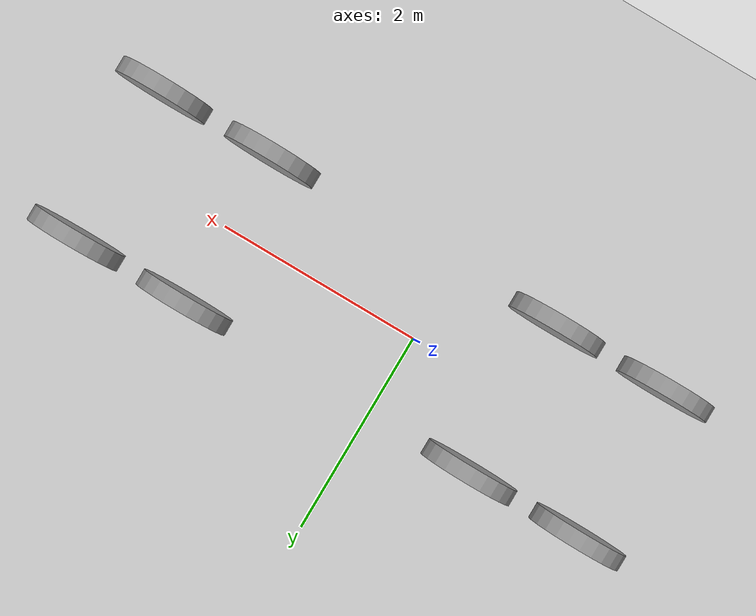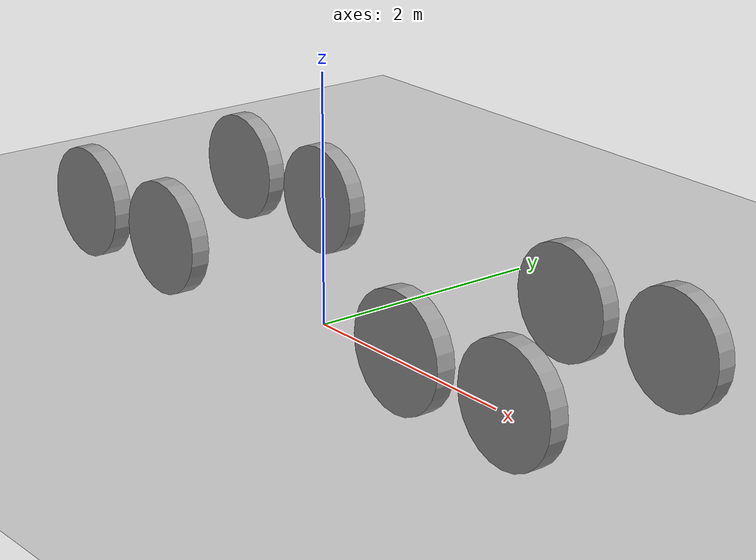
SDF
<sdf version="1.7">
 <world name="default">
  <model name="ground_plane">
   <static>1</static>
   <link name="link">
    <collision name="collision">
     <geometry><plane><normal>0 0 1</normal><size>100 100</size></plane></geometry>
     <surface>
      <contact><collide_bitmask>65535</collide_bitmask></contact>
      <friction><ode><mu>100</mu><mu2>50</mu2></ode></friction>
     </surface>
    </collision>
    <visual name="visual">
     <cast_shadows>0</cast_shadows>
     <geometry><plane><normal>0 0 1</normal><size>100 100</size></plane></geometry>
     <material>
      <script><uri>file://media/materials/scripts/gazebo.material</uri><name>Gazebo/Grey</name></script>
     </material>
    </visual>
   </link>
  </model>
  <model name="train_wheels">
   <link name="link">
    <inertial>
     <mass>1</mass>
     <inertia><ixx>0.145833</ixx><ixy>0</ixy><ixz>0</ixz><iyy>0.145833</iyy><iyz>0</iyz><izz>0.125</izz></inertia>
    </inertial>
    <pose>3 0.75 0.6 0 -0 0</pose>
    <visual name="visual">
     <geometry><cylinder><radius>0.45</radius><length>0.15</length></cylinder></geometry>
     <material>
      <script><name>Gazebo/Grey</name><uri>file://media/materials/scripts/gazebo.material</uri></script>
      <shader type="pixel"><normal_map>__default__</normal_map></shader>
      <ambient>0.3 0.3 0.3 1</ambient>
      <diffuse>0.7 0.7 0.7 1</diffuse>
      <specular>0.01 0.01 0.01 1</specular>
      <emissive>0 0 0 1</emissive>
     </material>
     <pose>0 0 0 1.5708 -0 0</pose>
    </visual>
    <collision name="collision">
     <geometry><cylinder><radius>0.45</radius><length>0.15</length></cylinder></geometry>
     <pose>0 0 0 1.5708 -0 0</pose>
     <material>
      <script><name>Gazebo/Grey</name><uri>file://media/materials/scripts/gazebo.material</uri></script>
      <shader type="pixel"><normal_map>__default__</normal_map></shader>
      <ambient>0.3 0.3 0.3 1</ambient>
      <diffuse>0.7 0.7 0.7 1</diffuse>
      <specular>0.01 0.01 0.01 1</specular>
      <emissive>0 0 0 1</emissive>
     </material>
    </collision>
   </link>
   <link name="link_clone">
    <inertial>
     <mass>1</mass>
     <inertia><ixx>0.145833</ixx><ixy>0</ixy><ixz>0</ixz><iyy>0.145833</iyy><iyz>0</iyz><izz>0.125</izz></inertia>
    </inertial>
    <pose>1.9 0.75 0.6 0 -0 0</pose>
    <visual name="visual">
     <geometry><cylinder><radius>0.45</radius><length>0.15</length></cylinder></geometry>
     <material>
      <script><name>Gazebo/Grey</name><uri>file://media/materials/scripts/gazebo.material</uri></script>
      <shader type="pixel"><normal_map>__default__</normal_map></shader>
      <ambient>0.3 0.3 0.3 1</ambient>
      <diffuse>0.7 0.7 0.7 1</diffuse>
      <specular>0.01 0.01 0.01 1</specular>
      <emissive>0 0 0 1</emissive>
     </material>
     <pose>0 0 0 1.5708 -0 0</pose>
    </visual>
    <collision name="collision">
     <geometry><cylinder><radius>0.45</radius><length>0.15</length></cylinder></geometry>
     <pose>0 0 0 1.5708 -0 0</pose>
     <material>
      <script><name>Gazebo/Grey</name><uri>file://media/materials/scripts/gazebo.material</uri></script>
      <shader type="pixel"><normal_map>__default__</normal_map></shader>
      <ambient>0.3 0.3 0.3 1</ambient>
      <diffuse>0.7 0.7 0.7 1</diffuse>
      <specular>0.01 0.01 0.01 1</specular>
      <emissive>0 0 0 1</emissive>
     </material>
    </collision>
   </link>
   <link name="link_clone_0">
    <inertial>
     <mass>1</mass>
     <inertia><ixx>0.145833</ixx><ixy>0</ixy><ixz>0</ixz><iyy>0.145833</iyy><iyz>0</iyz><izz>0.125</izz></inertia>
    </inertial>
    <pose>3 -0.75 0.6 0 -0 0</pose>
    <visual name="visual">
     <geometry><cylinder><radius>0.45</radius><length>0.15</length></cylinder></geometry>
     <material>
      <script><name>Gazebo/Grey</name><uri>file://media/materials/scripts/gazebo.material</uri></script>
      <shader type="pixel"><normal_map>__default__</normal_map></shader>
      <ambient>0.3 0.3 0.3 1</ambient>
      <diffuse>0.7 0.7 0.7 1</diffuse>
      <specular>0.01 0.01 0.01 1</specular>
      <emissive>0 0 0 1</emissive>
     </material>
     <pose>0 0 0 1.5708 -0 0</pose>
    </visual>
    <collision name="collision">
     <geometry><cylinder><radius>0.45</radius><length>0.15</length></cylinder></geometry>
     <pose>0 0 0 1.5708 -0 0</pose>
     <material>
      <script><name>Gazebo/Grey</name><uri>file://media/materials/scripts/gazebo.material</uri></script>
      <shader type="pixel"><normal_map>__default__</normal_map></shader>
      <ambient>0.3 0.3 0.3 1</ambient>
      <diffuse>0.7 0.7 0.7 1</diffuse>
      <specular>0.01 0.01 0.01 1</specular>
      <emissive>0 0 0 1</emissive>
     </material>
    </collision>
   </link>
   <link name="link_clone_0_clone">
    <inertial>
     <mass>1</mass>
     <inertia><ixx>0.145833</ixx><ixy>0</ixy><ixz>0</ixz><iyy>0.145833</iyy><iyz>0</iyz><izz>0.125</izz></inertia>
    </inertial>
    <pose>1.9 -0.75 0.6 0 -0 0</pose>
    <visual name="visual">
     <geometry><cylinder><radius>0.45</radius><length>0.15</length></cylinder></geometry>
     <material>
      <script><name>Gazebo/Grey</name><uri>file://media/materials/scripts/gazebo.material</uri></script>
      <shader type="pixel"><normal_map>__default__</normal_map></shader>
      <ambient>0.3 0.3 0.3 1</ambient>
      <diffuse>0.7 0.7 0.7 1</diffuse>
      <specular>0.01 0.01 0.01 1</specular>
      <emissive>0 0 0 1</emissive>
     </material>
     <pose>0 0 0 1.5708 -0 0</pose>
    </visual>
    <collision name="collision">
     <geometry><cylinder><radius>0.45</radius><length>0.15</length></cylinder></geometry>
     <pose>0 0 0 1.5708 -0 0</pose>
     <material>
      <script><name>Gazebo/Grey</name><uri>file://media/materials/scripts/gazebo.material</uri></script>
      <shader type="pixel"><normal_map>__default__</normal_map></shader>
      <ambient>0.3 0.3 0.3 1</ambient>
      <diffuse>0.7 0.7 0.7 1</diffuse>
      <specular>0.01 0.01 0.01 1</specular>
      <emissive>0 0 0 1</emissive>
     </material>
    </collision>
   </link>
   <link name="link_clone_0_clone_clone">
    <inertial>
     <mass>1</mass>
     <inertia><ixx>0.145833</ixx><ixy>0</ixy><ixz>0</ixz><iyy>0.145833</iyy><iyz>0</iyz><izz>0.125</izz></inertia>
    </inertial>
    <pose>-1 -0.75 0.6 0 -0 0</pose>
    <visual name="visual">
     <geometry><cylinder><radius>0.45</radius><length>0.15</length></cylinder></geometry>
     <material>
      <script><name>Gazebo/Grey</name><uri>file://media/materials/scripts/gazebo.material</uri></script>
      <shader type="pixel"><normal_map>__default__</normal_map></shader>
      <ambient>0.3 0.3 0.3 1</ambient>
      <diffuse>0.7 0.7 0.7 1</diffuse>
      <specular>0.01 0.01 0.01 1</specular>
      <emissive>0 0 0 1</emissive>
     </material>
     <pose>0 0 0 1.5708 -0 0</pose>
    </visual>
    <collision name="collision">
     <geometry><cylinder><radius>0.45</radius><length>0.15</length></cylinder></geometry>
     <pose>0 0 0 1.5708 -0 0</pose>
     <material>
      <script><name>Gazebo/Grey</name><uri>file://media/materials/scripts/gazebo.material</uri></script>
      <shader type="pixel"><normal_map>__default__</normal_map></shader>
      <ambient>0.3 0.3 0.3 1</ambient>
      <diffuse>0.7 0.7 0.7 1</diffuse>
      <specular>0.01 0.01 0.01 1</specular>
      <emissive>0 0 0 1</emissive>
     </material>
    </collision>
   </link>
   <link name="link_clone_0_clone_clone_clone">
    <inertial>
     <mass>1</mass>
     <inertia><ixx>0.145833</ixx><ixy>0</ixy><ixz>0</ixz><iyy>0.145833</iyy><iyz>0</iyz><izz>0.125</izz></inertia>
    </inertial>
    <pose>-2.1 -0.75 0.6 0 -0 0</pose>
    <visual name="visual">
     <geometry><cylinder><radius>0.45</radius><length>0.15</length></cylinder></geometry>
     <material>
      <script><name>Gazebo/Grey</name><uri>file://media/materials/scripts/gazebo.material</uri></script>
      <shader type="pixel"><normal_map>__default__</normal_map></shader>
      <ambient>0.3 0.3 0.3 1</ambient>
      <diffuse>0.7 0.7 0.7 1</diffuse>
      <specular>0.01 0.01 0.01 1</specular>
      <emissive>0 0 0 1</emissive>
     </material>
     <pose>0 0 0 1.5708 -0 0</pose>
    </visual>
    <collision name="collision">
     <geometry><cylinder><radius>0.45</radius><length>0.15</length></cylinder></geometry>
     <pose>0 0 0 1.5708 -0 0</pose>
     <material>
      <script><name>Gazebo/Grey</name><uri>file://media/materials/scripts/gazebo.material</uri></script>
      <shader type="pixel"><normal_map>__default__</normal_map></shader>
      <ambient>0.3 0.3 0.3 1</ambient>
      <diffuse>0.7 0.7 0.7 1</diffuse>
      <specular>0.01 0.01 0.01 1</specular>
      <emissive>0 0 0 1</emissive>
     </material>
    </collision>
   </link>
   <link name="link_clone_clone">
    <inertial>
     <mass>1</mass>
     <inertia><ixx>0.145833</ixx><ixy>0</ixy><ixz>0</ixz><iyy>0.145833</iyy><iyz>0</iyz><izz>0.125</izz></inertia>
    </inertial>
    <pose>-1 0.75 0.6 0 -0 0</pose>
    <visual name="visual">
     <geometry><cylinder><radius>0.45</radius><length>0.15</length></cylinder></geometry>
     <material>
      <script><name>Gazebo/Grey</name><uri>file://media/materials/scripts/gazebo.material</uri></script>
      <shader type="pixel"><normal_map>__default__</normal_map></shader>
      <ambient>0.3 0.3 0.3 1</ambient>
      <diffuse>0.7 0.7 0.7 1</diffuse>
      <specular>0.01 0.01 0.01 1</specular>
      <emissive>0 0 0 1</emissive>
     </material>
     <pose>0 0 0 1.5708 -0 0</pose>
    </visual>
    <collision name="collision">
     <geometry><cylinder><radius>0.45</radius><length>0.15</length></cylinder></geometry>
     <pose>0 0 0 1.5708 -0 0</pose>
     <material>
      <script><name>Gazebo/Grey</name><uri>file://media/materials/scripts/gazebo.material</uri></script>
      <shader type="pixel"><normal_map>__default__</normal_map></shader>
      <ambient>0.3 0.3 0.3 1</ambient>
      <diffuse>0.7 0.7 0.7 1</diffuse>
      <specular>0.01 0.01 0.01 1</specular>
      <emissive>0 0 0 1</emissive>
     </material>
    </collision>
   </link>
   <link name="link_clone_clone_clone">
    <inertial>
     <mass>1</mass>
     <inertia><ixx>0.145833</ixx><ixy>0</ixy><ixz>0</ixz><iyy>0.145833</iyy><iyz>0</iyz><izz>0.125</izz></inertia>
    </inertial>
    <pose>-2.1 0.75 0.6 0 -0 0</pose>
    <visual name="visual">
     <geometry><cylinder><radius>0.45</radius><length>0.15</length></cylinder></geometry>
     <material>
      <script><name>Gazebo/Grey</name><uri>file://media/materials/scripts/gazebo.material</uri></script>
      <shader type="pixel"><normal_map>__default__</normal_map></shader>
      <ambient>0.3 0.3 0.3 1</ambient>
      <diffuse>0.7 0.7 0.7 1</diffuse>
      <specular>0.01 0.01 0.01 1</specular>
      <emissive>0 0 0 1</emissive>
     </material>
     <pose>0 0 0 1.5708 -0 0</pose>
    </visual>
    <collision name="collision">
     <geometry><cylinder><radius>0.45</radius><length>0.15</length></cylinder></geometry>
     <pose>0 0 0 1.5708 -0 0</pose>
     <material>
      <script><name>Gazebo/Grey</name><uri>file://media/materials/scripts/gazebo.material</uri></script>
      <shader type="pixel"><normal_map>__default__</normal_map></shader>
      <ambient>0.3 0.3 0.3 1</ambient>
      <diffuse>0.7 0.7 0.7 1</diffuse>
      <specular>0.01 0.01 0.01 1</specular>
      <emissive>0 0 0 1</emissive>
     </material>
    </collision>
   </link>
   <static>1</static>
  </model>
 </world>
</sdf>
